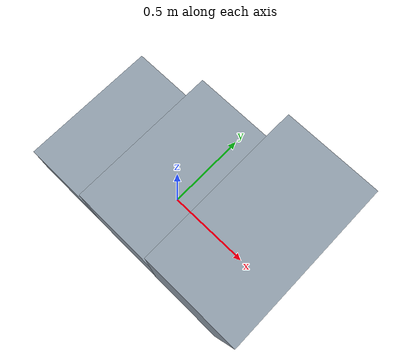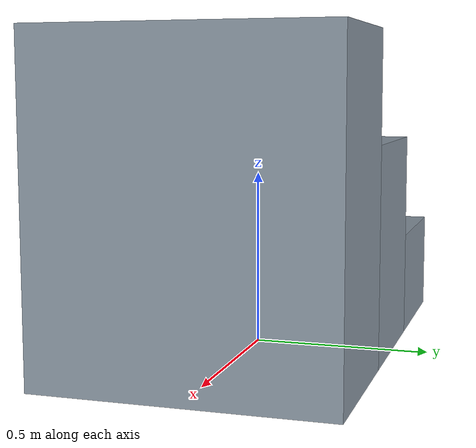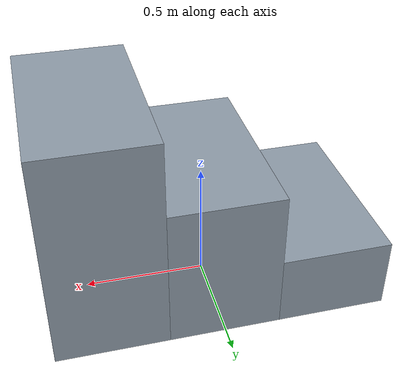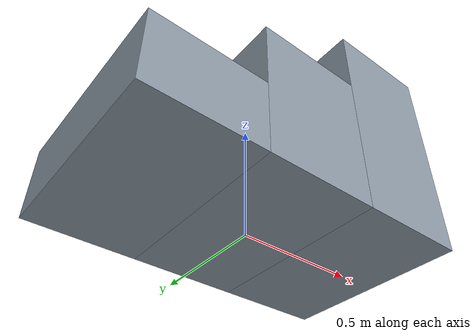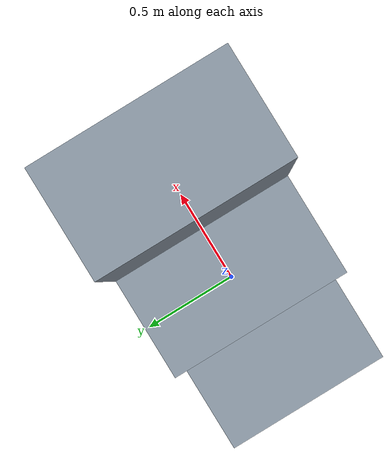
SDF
<?xml version="1.0"?>
<sdf version="1.7">
  <model name="xgc2_geom_stairs">
    <link name="body">
      <kinematic>true</kinematic>
      <gravity>false</gravity>
      <collision name="step_1">
        <pose>-0.45 0 0.15 0 0 0</pose>
        <geometry><box><size>0.45 0.8 0.3</size></box></geometry>
      </collision>
      <collision name="step_2">
        <pose>0 0 0.3 0 0 0</pose>
        <geometry><box><size>0.45 0.8 0.6</size></box></geometry>
      </collision>
      <collision name="step_3">
        <pose>0.45 0 0.45 0 0 0</pose>
        <geometry><box><size>0.45 0.8 0.9</size></box></geometry>
      </collision>
      <visual name="step_1">
        <pose>-0.45 0 0.15 0 0 0</pose>
        <geometry><box><size>0.45 0.8 0.3</size></box></geometry>
        <material><ambient>0.55 0.6 0.65 1</ambient><diffuse>0.55 0.6 0.65 1</diffuse></material>
      </visual>
      <visual name="step_2">
        <pose>0 0 0.3 0 0 0</pose>
        <geometry><box><size>0.45 0.8 0.6</size></box></geometry>
        <material><ambient>0.55 0.6 0.65 1</ambient><diffuse>0.55 0.6 0.65 1</diffuse></material>
      </visual>
      <visual name="step_3">
        <pose>0.45 0 0.45 0 0 0</pose>
        <geometry><box><size>0.45 0.8 0.9</size></box></geometry>
        <material><ambient>0.55 0.6 0.65 1</ambient><diffuse>0.55 0.6 0.65 1</diffuse></material>
      </visual>
    </link>
  </model>
</sdf>
